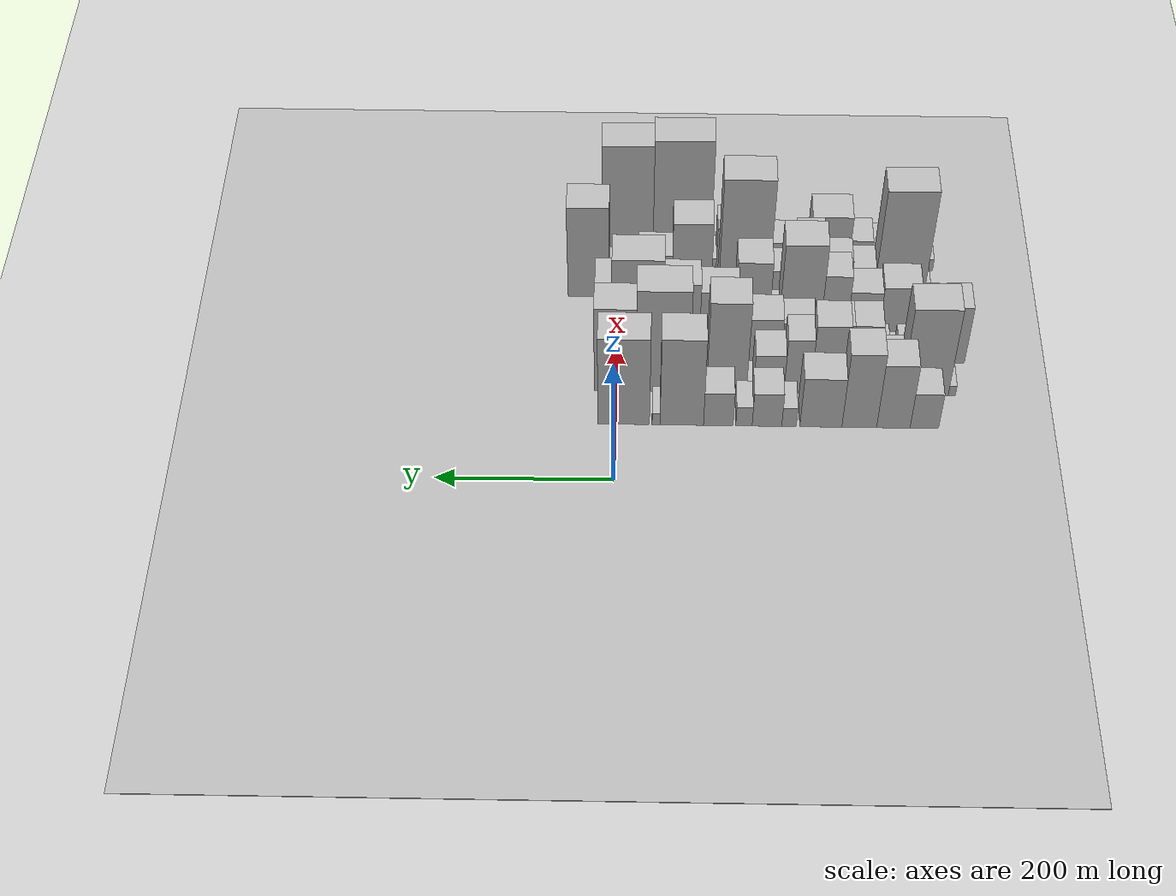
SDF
<sdf version="1.6">
 <world name="default">
  <include><name>ground_plane_1</name><uri>model://HANNAS_ground_plane</uri></include>
  <include>
   <name>ground_plane_2</name>
   <uri>model://HANNAS_ground_plane</uri>
   <pose>100 0 0  0 0 0</pose>
  </include>
  <model name="building_12">
   <static>1</static>
   <pose>100.0000 -352.0713 0 0.000000 0.000000 0.000000</pose>
   <link name="link">
    <pose>0 0 30.00 0 0 0</pose>
    <collision name="collision"><geometry><box><size>40.0000 32.4109 60.0000</size></box></geometry></collision>
    <visual name="visual">
     <cast_shadows>0</cast_shadows>
     <geometry><box><size>40.0000 32.4109 60.0000</size></box></geometry>
     <material>
      <script>
       <uri>model://HANNAS_wall/materials/scripts</uri>
       <uri>model://HANNAS_wall/materials/textures</uri>
       <name>vrc/HANNAS_wall</name>
      </script>
     </material>
    </visual>
   </link>
  </model>
  <model name="building_13">
   <static>1</static>
   <pose>100.0000 -316.8234 0 0.000000 0.000000 0.000000</pose>
   <link name="link">
    <pose>0 0 54.00 0 0 0</pose>
    <collision name="collision"><geometry><box><size>40.0000 38.0850 108.0000</size></box></geometry></collision>
    <visual name="visual">
     <cast_shadows>0</cast_shadows>
     <geometry><box><size>40.0000 38.0850 108.0000</size></box></geometry>
     <material>
      <script>
       <uri>model://HANNAS_wall/materials/scripts</uri>
       <uri>model://HANNAS_wall/materials/textures</uri>
       <name>vrc/HANNAS_wall</name>
      </script>
     </material>
    </visual>
   </link>
  </model>
  <model name="building_14">
   <static>1</static>
   <pose>100.0000 -278.0052 0 0.000000 0.000000 0.000000</pose>
   <link name="link">
    <pose>0 0 63.00 0 0 0</pose>
    <collision name="collision"><geometry><box><size>40.0000 39.5514 126.0000</size></box></geometry></collision>
    <visual name="visual">
     <cast_shadows>0</cast_shadows>
     <geometry><box><size>40.0000 39.5514 126.0000</size></box></geometry>
     <material>
      <script>
       <uri>model://HANNAS_wall/materials/scripts</uri>
       <uri>model://HANNAS_wall/materials/textures</uri>
       <name>vrc/HANNAS_wall</name>
      </script>
     </material>
    </visual>
   </link>
  </model>
  <model name="building_15">
   <static>1</static>
   <pose>100.0000 -234.2888 0 0.000000 0.000000 0.000000</pose>
   <link name="link">
    <pose>0 0 42.00 0 0 0</pose>
    <collision name="collision"><geometry><box><size>40.0000 47.8813 84.0000</size></box></geometry></collision>
    <visual name="visual">
     <cast_shadows>0</cast_shadows>
     <geometry><box><size>40.0000 47.8813 84.0000</size></box></geometry>
     <material>
      <script>
       <uri>model://HANNAS_wall/materials/scripts</uri>
       <uri>model://HANNAS_wall/materials/textures</uri>
       <name>vrc/HANNAS_wall</name>
      </script>
     </material>
    </visual>
   </link>
  </model>
  <model name="building_16">
   <static>1</static>
   <pose>100.0000 -198.0670 0 0.000000 0.000000 0.000000</pose>
   <link name="link">
    <pose>0 0 16.50 0 0 0</pose>
    <collision name="collision"><geometry><box><size>40.0000 16.5623 33.0000</size></box></geometry></collision>
    <visual name="visual">
     <cast_shadows>0</cast_shadows>
     <geometry><box><size>40.0000 16.5623 33.0000</size></box></geometry>
     <material>
      <script>
       <uri>model://HANNAS_wall/materials/scripts</uri>
       <uri>model://HANNAS_wall/materials/textures</uri>
       <name>vrc/HANNAS_wall</name>
      </script>
     </material>
    </visual>
   </link>
  </model>
  <model name="building_17">
   <static>1</static>
   <pose>100.0000 -172.8965 0 0.000000 0.000000 0.000000</pose>
   <link name="link">
    <pose>0 0 28.50 0 0 0</pose>
    <collision name="collision"><geometry><box><size>40.0000 33.7787 57.0000</size></box></geometry></collision>
    <visual name="visual">
     <cast_shadows>0</cast_shadows>
     <geometry><box><size>40.0000 33.7787 57.0000</size></box></geometry>
     <material>
      <script>
       <uri>model://HANNAS_wall/materials/scripts</uri>
       <uri>model://HANNAS_wall/materials/textures</uri>
       <name>vrc/HANNAS_wall</name>
      </script>
     </material>
    </visual>
   </link>
  </model>
  <model name="building_18">
   <static>1</static>
   <pose>100.0000 -146.7060 0 0.000000 0.000000 0.000000</pose>
   <link name="link">
    <pose>0 0 16.50 0 0 0</pose>
    <collision name="collision"><geometry><box><size>40.0000 18.6024 33.0000</size></box></geometry></collision>
    <visual name="visual">
     <cast_shadows>0</cast_shadows>
     <geometry><box><size>40.0000 18.6024 33.0000</size></box></geometry>
     <material>
      <script>
       <uri>model://HANNAS_wall/materials/scripts</uri>
       <uri>model://HANNAS_wall/materials/textures</uri>
       <name>vrc/HANNAS_wall</name>
      </script>
     </material>
    </visual>
   </link>
  </model>
  <model name="building_19">
   <static>1</static>
   <pose>100.0000 -117.5233 0 0.000000 0.000000 0.000000</pose>
   <link name="link">
    <pose>0 0 28.50 0 0 0</pose>
    <collision name="collision"><geometry><box><size>40.0000 33.7629 57.0000</size></box></geometry></collision>
    <visual name="visual">
     <cast_shadows>0</cast_shadows>
     <geometry><box><size>40.0000 33.7629 57.0000</size></box></geometry>
     <material>
      <script>
       <uri>model://HANNAS_wall/materials/scripts</uri>
       <uri>model://HANNAS_wall/materials/textures</uri>
       <name>vrc/HANNAS_wall</name>
      </script>
     </material>
    </visual>
   </link>
  </model>
  <model name="building_20">
   <static>1</static>
   <pose>100.0000 -75.8628 0 0.000000 0.000000 0.000000</pose>
   <link name="link">
    <pose>0 0 73.50 0 0 0</pose>
    <collision name="collision"><geometry><box><size>40.0000 49.5582 147.0000</size></box></geometry></collision>
    <visual name="visual">
     <cast_shadows>0</cast_shadows>
     <geometry><box><size>40.0000 49.5582 147.0000</size></box></geometry>
     <material>
      <script>
       <uri>model://HANNAS_wall/materials/scripts</uri>
       <uri>model://HANNAS_wall/materials/textures</uri>
       <name>vrc/HANNAS_wall</name>
      </script>
     </material>
    </visual>
   </link>
  </model>
  <model name="building_21">
   <static>1</static>
   <pose>100.0000 -46.5748 0 0.000000 0.000000 0.000000</pose>
   <link name="link">
    <pose>0 0 10.50 0 0 0</pose>
    <collision name="collision"><geometry><box><size>40.0000 9.0179 21.0000</size></box></geometry></collision>
    <visual name="visual">
     <cast_shadows>0</cast_shadows>
     <geometry><box><size>40.0000 9.0179 21.0000</size></box></geometry>
     <material>
      <script>
       <uri>model://HANNAS_wall/materials/scripts</uri>
       <uri>model://HANNAS_wall/materials/textures</uri>
       <name>vrc/HANNAS_wall</name>
      </script>
     </material>
    </visual>
   </link>
  </model>
  <model name="building_22">
   <static>1</static>
   <pose>100.0000 -9.7291 0 0.000000 0.000000 0.000000</pose>
   <link name="link">
    <pose>0 0 73.50 0 0 0</pose>
    <collision name="collision"><geometry><box><size>40.0000 58.6735 147.0000</size></box></geometry></collision>
    <visual name="visual">
     <cast_shadows>0</cast_shadows>
     <geometry><box><size>40.0000 58.6735 147.0000</size></box></geometry>
     <material>
      <script>
       <uri>model://HANNAS_wall/materials/scripts</uri>
       <uri>model://HANNAS_wall/materials/textures</uri>
       <name>vrc/HANNAS_wall</name>
      </script>
     </material>
    </visual>
   </link>
  </model>
  <model name="building_58">
   <static>1</static>
   <pose>149.0000 -387.4839 0 0.000000 0.000000 0.000000</pose>
   <link name="link">
    <pose>0 0 9.00 0 0 0</pose>
    <collision name="collision"><geometry><box><size>40.0000 8.3761 18.0000</size></box></geometry></collision>
    <visual name="visual">
     <cast_shadows>0</cast_shadows>
     <geometry><box><size>40.0000 8.3761 18.0000</size></box></geometry>
     <material>
      <script>
       <uri>model://HANNAS_wall/materials/scripts</uri>
       <uri>model://HANNAS_wall/materials/textures</uri>
       <name>vrc/HANNAS_wall</name>
      </script>
     </material>
    </visual>
   </link>
  </model>
  <model name="building_59">
   <static>1</static>
   <pose>149.0000 -356.2429 0 0.000000 0.000000 0.000000</pose>
   <link name="link">
    <pose>0 0 73.50 0 0 0</pose>
    <collision name="collision"><geometry><box><size>40.0000 54.1060 147.0000</size></box></geometry></collision>
    <visual name="visual">
     <cast_shadows>0</cast_shadows>
     <geometry><box><size>40.0000 54.1060 147.0000</size></box></geometry>
     <material>
      <script>
       <uri>model://HANNAS_wall/materials/scripts</uri>
       <uri>model://HANNAS_wall/materials/textures</uri>
       <name>vrc/HANNAS_wall</name>
      </script>
     </material>
    </visual>
   </link>
  </model>
  <model name="building_60">
   <static>1</static>
   <pose>149.0000 -311.7719 0 0.000000 0.000000 0.000000</pose>
   <link name="link">
    <pose>0 0 30.00 0 0 0</pose>
    <collision name="collision"><geometry><box><size>40.0000 34.8358 60.0000</size></box></geometry></collision>
    <visual name="visual">
     <cast_shadows>0</cast_shadows>
     <geometry><box><size>40.0000 34.8358 60.0000</size></box></geometry>
     <material>
      <script>
       <uri>model://HANNAS_wall/materials/scripts</uri>
       <uri>model://HANNAS_wall/materials/textures</uri>
       <name>vrc/HANNAS_wall</name>
      </script>
     </material>
    </visual>
   </link>
  </model>
  <model name="building_61">
   <static>1</static>
   <pose>149.0000 -277.9789 0 0.000000 0.000000 0.000000</pose>
   <link name="link">
    <pose>0 0 15.00 0 0 0</pose>
    <collision name="collision"><geometry><box><size>40.0000 16.7503 30.0000</size></box></geometry></collision>
    <visual name="visual">
     <cast_shadows>0</cast_shadows>
     <geometry><box><size>40.0000 16.7503 30.0000</size></box></geometry>
     <material>
      <script>
       <uri>model://HANNAS_wall/materials/scripts</uri>
       <uri>model://HANNAS_wall/materials/textures</uri>
       <name>vrc/HANNAS_wall</name>
      </script>
     </material>
    </visual>
   </link>
  </model>
  <model name="building_62">
   <static>1</static>
   <pose>149.0000 -244.0146 0 0.000000 0.000000 0.000000</pose>
   <link name="link">
    <pose>0 0 58.50 0 0 0</pose>
    <collision name="collision"><geometry><box><size>40.0000 39.1783 117.0000</size></box></geometry></collision>
    <visual name="visual">
     <cast_shadows>0</cast_shadows>
     <geometry><box><size>40.0000 39.1783 117.0000</size></box></geometry>
     <material>
      <script>
       <uri>model://HANNAS_wall/materials/scripts</uri>
       <uri>model://HANNAS_wall/materials/textures</uri>
       <name>vrc/HANNAS_wall</name>
      </script>
     </material>
    </visual>
   </link>
  </model>
  <model name="building_63">
   <static>1</static>
   <pose>149.0000 -209.0764 0 0.000000 0.000000 0.000000</pose>
   <link name="link">
    <pose>0 0 46.50 0 0 0</pose>
    <collision name="collision"><geometry><box><size>40.0000 30.6981 93.0000</size></box></geometry></collision>
    <visual name="visual">
     <cast_shadows>0</cast_shadows>
     <geometry><box><size>40.0000 30.6981 93.0000</size></box></geometry>
     <material>
      <script>
       <uri>model://HANNAS_wall/materials/scripts</uri>
       <uri>model://HANNAS_wall/materials/textures</uri>
       <name>vrc/HANNAS_wall</name>
      </script>
     </material>
    </visual>
   </link>
  </model>
  <model name="building_64">
   <static>1</static>
   <pose>149.0000 -176.1616 0 0.000000 0.000000 0.000000</pose>
   <link name="link">
    <pose>0 0 33.00 0 0 0</pose>
    <collision name="collision"><geometry><box><size>40.0000 35.1316 66.0000</size></box></geometry></collision>
    <visual name="visual">
     <cast_shadows>0</cast_shadows>
     <geometry><box><size>40.0000 35.1316 66.0000</size></box></geometry>
     <material>
      <script>
       <uri>model://HANNAS_wall/materials/scripts</uri>
       <uri>model://HANNAS_wall/materials/textures</uri>
       <name>vrc/HANNAS_wall</name>
      </script>
     </material>
    </visual>
   </link>
  </model>
  <model name="building_65">
   <static>1</static>
   <pose>149.0000 -127.5393 0 0.000000 0.000000 0.000000</pose>
   <link name="link">
    <pose>0 0 76.50 0 0 0</pose>
    <collision name="collision"><geometry><box><size>40.0000 46.1130 153.0000</size></box></geometry></collision>
    <visual name="visual">
     <cast_shadows>0</cast_shadows>
     <geometry><box><size>40.0000 46.1130 153.0000</size></box></geometry>
     <material>
      <script>
       <uri>model://HANNAS_wall/materials/scripts</uri>
       <uri>model://HANNAS_wall/materials/textures</uri>
       <name>vrc/HANNAS_wall</name>
      </script>
     </material>
    </visual>
   </link>
  </model>
  <model name="building_66">
   <static>1</static>
   <pose>149.0000 -89.4264 0 0.000000 0.000000 0.000000</pose>
   <link name="link">
    <pose>0 0 10.50 0 0 0</pose>
    <collision name="collision"><geometry><box><size>40.0000 10.1128 21.0000</size></box></geometry></collision>
    <visual name="visual">
     <cast_shadows>0</cast_shadows>
     <geometry><box><size>40.0000 10.1128 21.0000</size></box></geometry>
     <material>
      <script>
       <uri>model://HANNAS_wall/materials/scripts</uri>
       <uri>model://HANNAS_wall/materials/textures</uri>
       <name>vrc/HANNAS_wall</name>
      </script>
     </material>
    </visual>
   </link>
  </model>
  <model name="building_67">
   <static>1</static>
   <pose>149.0000 -53.6856 0 0.000000 0.000000 0.000000</pose>
   <link name="link">
    <pose>0 0 85.50 0 0 0</pose>
    <collision name="collision"><geometry><box><size>40.0000 61.3687 171.0000</size></box></geometry></collision>
    <visual name="visual">
     <cast_shadows>0</cast_shadows>
     <geometry><box><size>40.0000 61.3687 171.0000</size></box></geometry>
     <material>
      <script>
       <uri>model://HANNAS_wall/materials/scripts</uri>
       <uri>model://HANNAS_wall/materials/textures</uri>
       <name>vrc/HANNAS_wall</name>
      </script>
     </material>
    </visual>
   </link>
  </model>
  <model name="building_68">
   <static>1</static>
   <pose>149.0000 0.9310 0 0.000000 0.000000 0.000000</pose>
   <link name="link">
    <pose>0 0 70.50 0 0 0</pose>
    <collision name="collision"><geometry><box><size>40.0000 47.8645 141.0000</size></box></geometry></collision>
    <visual name="visual">
     <cast_shadows>0</cast_shadows>
     <geometry><box><size>40.0000 47.8645 141.0000</size></box></geometry>
     <material>
      <script>
       <uri>model://HANNAS_wall/materials/scripts</uri>
       <uri>model://HANNAS_wall/materials/textures</uri>
       <name>vrc/HANNAS_wall</name>
      </script>
     </material>
    </visual>
   </link>
  </model>
  <model name="building_106">
   <static>1</static>
   <pose>198.0000 -391.7980 0 0.000000 0.000000 0.000000</pose>
   <link name="link">
    <pose>0 0 48.00 0 0 0</pose>
    <collision name="collision"><geometry><box><size>40.0000 28.8769 96.0000</size></box></geometry></collision>
    <visual name="visual">
     <cast_shadows>0</cast_shadows>
     <geometry><box><size>40.0000 28.8769 96.0000</size></box></geometry>
     <material>
      <script>
       <uri>model://HANNAS_wall/materials/scripts</uri>
       <uri>model://HANNAS_wall/materials/textures</uri>
       <name>vrc/HANNAS_wall</name>
      </script>
     </material>
    </visual>
   </link>
  </model>
  <model name="building_107">
   <static>1</static>
   <pose>198.0000 -356.1934 0 0.000000 0.000000 0.000000</pose>
   <link name="link">
    <pose>0 0 31.50 0 0 0</pose>
    <collision name="collision"><geometry><box><size>40.0000 32.3324 63.0000</size></box></geometry></collision>
    <visual name="visual">
     <cast_shadows>0</cast_shadows>
     <geometry><box><size>40.0000 32.3324 63.0000</size></box></geometry>
     <material>
      <script>
       <uri>model://HANNAS_wall/materials/scripts</uri>
       <uri>model://HANNAS_wall/materials/textures</uri>
       <name>vrc/HANNAS_wall</name>
      </script>
     </material>
    </visual>
   </link>
  </model>
  <model name="building_108">
   <static>1</static>
   <pose>198.0000 -334.2231 0 0.000000 0.000000 0.000000</pose>
   <link name="link">
    <pose>0 0 12.00 0 0 0</pose>
    <collision name="collision"><geometry><box><size>40.0000 11.6083 24.0000</size></box></geometry></collision>
    <visual name="visual">
     <cast_shadows>0</cast_shadows>
     <geometry><box><size>40.0000 11.6083 24.0000</size></box></geometry>
     <material>
      <script>
       <uri>model://HANNAS_wall/materials/scripts</uri>
       <uri>model://HANNAS_wall/materials/textures</uri>
       <name>vrc/HANNAS_wall</name>
      </script>
     </material>
    </visual>
   </link>
  </model>
  <model name="building_109">
   <static>1</static>
   <pose>198.0000 -313.2500 0 0.000000 0.000000 0.000000</pose>
   <link name="link">
    <pose>0 0 12.00 0 0 0</pose>
    <collision name="collision"><geometry><box><size>40.0000 10.3378 24.0000</size></box></geometry></collision>
    <visual name="visual">
     <cast_shadows>0</cast_shadows>
     <geometry><box><size>40.0000 10.3378 24.0000</size></box></geometry>
     <material>
      <script>
       <uri>model://HANNAS_wall/materials/scripts</uri>
       <uri>model://HANNAS_wall/materials/textures</uri>
       <name>vrc/HANNAS_wall</name>
      </script>
     </material>
    </visual>
   </link>
  </model>
  <model name="building_110">
   <static>1</static>
   <pose>198.0000 -291.2838 0 0.000000 0.000000 0.000000</pose>
   <link name="link">
    <pose>0 0 31.50 0 0 0</pose>
    <collision name="collision"><geometry><box><size>40.0000 33.5947 63.0000</size></box></geometry></collision>
    <visual name="visual">
     <cast_shadows>0</cast_shadows>
     <geometry><box><size>40.0000 33.5947 63.0000</size></box></geometry>
     <material>
      <script>
       <uri>model://HANNAS_wall/materials/scripts</uri>
       <uri>model://HANNAS_wall/materials/textures</uri>
       <name>vrc/HANNAS_wall</name>
      </script>
     </material>
    </visual>
   </link>
  </model>
  <model name="building_111">
   <static>1</static>
   <pose>198.0000 -256.0972 0 0.000000 0.000000 0.000000</pose>
   <link name="link">
    <pose>0 0 31.50 0 0 0</pose>
    <collision name="collision"><geometry><box><size>40.0000 36.7785 63.0000</size></box></geometry></collision>
    <visual name="visual">
     <cast_shadows>0</cast_shadows>
     <geometry><box><size>40.0000 36.7785 63.0000</size></box></geometry>
     <material>
      <script>
       <uri>model://HANNAS_wall/materials/scripts</uri>
       <uri>model://HANNAS_wall/materials/textures</uri>
       <name>vrc/HANNAS_wall</name>
      </script>
     </material>
    </visual>
   </link>
  </model>
  <model name="building_112">
   <static>1</static>
   <pose>198.0000 -210.4511 0 0.000000 0.000000 0.000000</pose>
   <link name="link">
    <pose>0 0 33.00 0 0 0</pose>
    <collision name="collision"><geometry><box><size>40.0000 36.5137 66.0000</size></box></geometry></collision>
    <visual name="visual">
     <cast_shadows>0</cast_shadows>
     <geometry><box><size>40.0000 36.5137 66.0000</size></box></geometry>
     <material>
      <script>
       <uri>model://HANNAS_wall/materials/scripts</uri>
       <uri>model://HANNAS_wall/materials/textures</uri>
       <name>vrc/HANNAS_wall</name>
      </script>
     </material>
    </visual>
   </link>
  </model>
  <model name="building_113">
   <static>1</static>
   <pose>198.0000 -171.9728 0 0.000000 0.000000 0.000000</pose>
   <link name="link">
    <pose>0 0 36.00 0 0 0</pose>
    <collision name="collision"><geometry><box><size>40.0000 40.4430 72.0000</size></box></geometry></collision>
    <visual name="visual">
     <cast_shadows>0</cast_shadows>
     <geometry><box><size>40.0000 40.4430 72.0000</size></box></geometry>
     <material>
      <script>
       <uri>model://HANNAS_wall/materials/scripts</uri>
       <uri>model://HANNAS_wall/materials/textures</uri>
       <name>vrc/HANNAS_wall</name>
      </script>
     </material>
    </visual>
   </link>
  </model>
  <model name="building_114">
   <static>1</static>
   <pose>198.0000 -145.6920 0 0.000000 0.000000 0.000000</pose>
   <link name="link">
    <pose>0 0 13.50 0 0 0</pose>
    <collision name="collision"><geometry><box><size>40.0000 12.1185 27.0000</size></box></geometry></collision>
    <visual name="visual">
     <cast_shadows>0</cast_shadows>
     <geometry><box><size>40.0000 12.1185 27.0000</size></box></geometry>
     <material>
      <script>
       <uri>model://HANNAS_wall/materials/scripts</uri>
       <uri>model://HANNAS_wall/materials/textures</uri>
       <name>vrc/HANNAS_wall</name>
      </script>
     </material>
    </visual>
   </link>
  </model>
  <model name="building_115">
   <static>1</static>
   <pose>198.0000 -117.6447 0 0.000000 0.000000 0.000000</pose>
   <link name="link">
    <pose>0 0 58.50 0 0 0</pose>
    <collision name="collision"><geometry><box><size>40.0000 43.9761 117.0000</size></box></geometry></collision>
    <visual name="visual">
     <cast_shadows>0</cast_shadows>
     <geometry><box><size>40.0000 43.9761 117.0000</size></box></geometry>
     <material>
      <script>
       <uri>model://HANNAS_wall/materials/scripts</uri>
       <uri>model://HANNAS_wall/materials/textures</uri>
       <name>vrc/HANNAS_wall</name>
      </script>
     </material>
    </visual>
   </link>
  </model>
  <model name="building_116">
   <static>1</static>
   <pose>198.0000 -74.8340 0 0.000000 0.000000 0.000000</pose>
   <link name="link">
    <pose>0 0 64.50 0 0 0</pose>
    <collision name="collision"><geometry><box><size>40.0000 41.6453 129.0000</size></box></geometry></collision>
    <visual name="visual">
     <cast_shadows>0</cast_shadows>
     <geometry><box><size>40.0000 41.6453 129.0000</size></box></geometry>
     <material>
      <script>
       <uri>model://HANNAS_wall/materials/scripts</uri>
       <uri>model://HANNAS_wall/materials/textures</uri>
       <name>vrc/HANNAS_wall</name>
      </script>
     </material>
    </visual>
   </link>
  </model>
  <model name="building_117">
   <static>1</static>
   <pose>198.0000 -24.2948 0 0.000000 0.000000 0.000000</pose>
   <link name="link">
    <pose>0 0 84.00 0 0 0</pose>
    <collision name="collision"><geometry><box><size>40.0000 59.4331 168.0000</size></box></geometry></collision>
    <visual name="visual">
     <cast_shadows>0</cast_shadows>
     <geometry><box><size>40.0000 59.4331 168.0000</size></box></geometry>
     <material>
      <script>
       <uri>model://HANNAS_wall/materials/scripts</uri>
       <uri>model://HANNAS_wall/materials/textures</uri>
       <name>vrc/HANNAS_wall</name>
      </script>
     </material>
    </visual>
   </link>
  </model>
  <model name="building_118">
   <static>1</static>
   <pose>198.0000 11.9076 0 0.000000 0.000000 0.000000</pose>
   <link name="link">
    <pose>0 0 7.50 0 0 0</pose>
    <collision name="collision"><geometry><box><size>40.0000 6.9717 15.0000</size></box></geometry></collision>
    <visual name="visual">
     <cast_shadows>0</cast_shadows>
     <geometry><box><size>40.0000 6.9717 15.0000</size></box></geometry>
     <material>
      <script>
       <uri>model://HANNAS_wall/materials/scripts</uri>
       <uri>model://HANNAS_wall/materials/textures</uri>
       <name>vrc/HANNAS_wall</name>
      </script>
     </material>
    </visual>
   </link>
  </model>
  <model name="building_156">
   <static>1</static>
   <pose>247.0000 -366.8235 0 0.000000 0.000000 0.000000</pose>
   <link name="link">
    <pose>0 0 21.00 0 0 0</pose>
    <collision name="collision"><geometry><box><size>40.0000 24.9106 42.0000</size></box></geometry></collision>
    <visual name="visual">
     <cast_shadows>0</cast_shadows>
     <geometry><box><size>40.0000 24.9106 42.0000</size></box></geometry>
     <material>
      <script>
       <uri>model://HANNAS_wall/materials/scripts</uri>
       <uri>model://HANNAS_wall/materials/textures</uri>
       <name>vrc/HANNAS_wall</name>
      </script>
     </material>
    </visual>
   </link>
  </model>
  <model name="building_157">
   <static>1</static>
   <pose>247.0000 -332.1568 0 0.000000 0.000000 0.000000</pose>
   <link name="link">
    <pose>0 0 37.50 0 0 0</pose>
    <collision name="collision"><geometry><box><size>40.0000 44.4227 75.0000</size></box></geometry></collision>
    <visual name="visual">
     <cast_shadows>0</cast_shadows>
     <geometry><box><size>40.0000 44.4227 75.0000</size></box></geometry>
     <material>
      <script>
       <uri>model://HANNAS_wall/materials/scripts</uri>
       <uri>model://HANNAS_wall/materials/textures</uri>
       <name>vrc/HANNAS_wall</name>
      </script>
     </material>
    </visual>
   </link>
  </model>
  <model name="building_158">
   <static>1</static>
   <pose>247.0000 -290.9001 0 0.000000 0.000000 0.000000</pose>
   <link name="link">
    <pose>0 0 33.00 0 0 0</pose>
    <collision name="collision"><geometry><box><size>40.0000 38.0909 66.0000</size></box></geometry></collision>
    <visual name="visual">
     <cast_shadows>0</cast_shadows>
     <geometry><box><size>40.0000 38.0909 66.0000</size></box></geometry>
     <material>
      <script>
       <uri>model://HANNAS_wall/materials/scripts</uri>
       <uri>model://HANNAS_wall/materials/textures</uri>
       <name>vrc/HANNAS_wall</name>
      </script>
     </material>
    </visual>
   </link>
  </model>
  <model name="building_159">
   <static>1</static>
   <pose>247.0000 -256.1348 0 0.000000 0.000000 0.000000</pose>
   <link name="link">
    <pose>0 0 46.50 0 0 0</pose>
    <collision name="collision"><geometry><box><size>40.0000 31.4397 93.0000</size></box></geometry></collision>
    <visual name="visual">
     <cast_shadows>0</cast_shadows>
     <geometry><box><size>40.0000 31.4397 93.0000</size></box></geometry>
     <material>
      <script>
       <uri>model://HANNAS_wall/materials/scripts</uri>
       <uri>model://HANNAS_wall/materials/textures</uri>
       <name>vrc/HANNAS_wall</name>
      </script>
     </material>
    </visual>
   </link>
  </model>
  <model name="building_160">
   <static>1</static>
   <pose>247.0000 -215.7185 0 0.000000 0.000000 0.000000</pose>
   <link name="link">
    <pose>0 0 72.00 0 0 0</pose>
    <collision name="collision"><geometry><box><size>40.0000 49.3929 144.0000</size></box></geometry></collision>
    <visual name="visual">
     <cast_shadows>0</cast_shadows>
     <geometry><box><size>40.0000 49.3929 144.0000</size></box></geometry>
     <material>
      <script>
       <uri>model://HANNAS_wall/materials/scripts</uri>
       <uri>model://HANNAS_wall/materials/textures</uri>
       <name>vrc/HANNAS_wall</name>
      </script>
     </material>
    </visual>
   </link>
  </model>
  <model name="building_161">
   <static>1</static>
   <pose>247.0000 -185.0529 0 0.000000 0.000000 0.000000</pose>
   <link name="link">
    <pose>0 0 13.50 0 0 0</pose>
    <collision name="collision"><geometry><box><size>40.0000 11.9383 27.0000</size></box></geometry></collision>
    <visual name="visual">
     <cast_shadows>0</cast_shadows>
     <geometry><box><size>40.0000 11.9383 27.0000</size></box></geometry>
     <material>
      <script>
       <uri>model://HANNAS_wall/materials/scripts</uri>
       <uri>model://HANNAS_wall/materials/textures</uri>
       <name>vrc/HANNAS_wall</name>
      </script>
     </material>
    </visual>
   </link>
  </model>
  <model name="building_162">
   <static>1</static>
   <pose>247.0000 -158.8027 0 0.000000 0.000000 0.000000</pose>
   <link name="link">
    <pose>0 0 57.00 0 0 0</pose>
    <collision name="collision"><geometry><box><size>40.0000 40.5620 114.0000</size></box></geometry></collision>
    <visual name="visual">
     <cast_shadows>0</cast_shadows>
     <geometry><box><size>40.0000 40.5620 114.0000</size></box></geometry>
     <material>
      <script>
       <uri>model://HANNAS_wall/materials/scripts</uri>
       <uri>model://HANNAS_wall/materials/textures</uri>
       <name>vrc/HANNAS_wall</name>
      </script>
     </material>
    </visual>
   </link>
  </model>
  <model name="building_163">
   <static>1</static>
   <pose>247.0000 -127.0566 0 0.000000 0.000000 0.000000</pose>
   <link name="link">
    <pose>0 0 19.50 0 0 0</pose>
    <collision name="collision"><geometry><box><size>40.0000 22.9303 39.0000</size></box></geometry></collision>
    <visual name="visual">
     <cast_shadows>0</cast_shadows>
     <geometry><box><size>40.0000 22.9303 39.0000</size></box></geometry>
     <material>
      <script>
       <uri>model://HANNAS_wall/materials/scripts</uri>
       <uri>model://HANNAS_wall/materials/textures</uri>
       <name>vrc/HANNAS_wall</name>
      </script>
     </material>
    </visual>
   </link>
  </model>
  <model name="building_164">
   <static>1</static>
   <pose>247.0000 -101.3671 0 0.000000 0.000000 0.000000</pose>
   <link name="link">
    <pose>0 0 15.00 0 0 0</pose>
    <collision name="collision"><geometry><box><size>40.0000 16.4486 30.0000</size></box></geometry></collision>
    <visual name="visual">
     <cast_shadows>0</cast_shadows>
     <geometry><box><size>40.0000 16.4486 30.0000</size></box></geometry>
     <material>
      <script>
       <uri>model://HANNAS_wall/materials/scripts</uri>
       <uri>model://HANNAS_wall/materials/textures</uri>
       <name>vrc/HANNAS_wall</name>
      </script>
     </material>
    </visual>
   </link>
  </model>
  <model name="building_165">
   <static>1</static>
   <pose>247.0000 -70.6679 0 0.000000 0.000000 0.000000</pose>
   <link name="link">
    <pose>0 0 27.00 0 0 0</pose>
    <collision name="collision"><geometry><box><size>40.0000 28.9497 54.0000</size></box></geometry></collision>
    <visual name="visual">
     <cast_shadows>0</cast_shadows>
     <geometry><box><size>40.0000 28.9497 54.0000</size></box></geometry>
     <material>
      <script>
       <uri>model://HANNAS_wall/materials/scripts</uri>
       <uri>model://HANNAS_wall/materials/textures</uri>
       <name>vrc/HANNAS_wall</name>
      </script>
     </material>
    </visual>
   </link>
  </model>
  <model name="building_166">
   <static>1</static>
   <pose>247.0000 -45.3790 0 0.000000 0.000000 0.000000</pose>
   <link name="link">
    <pose>0 0 19.50 0 0 0</pose>
    <collision name="collision"><geometry><box><size>40.0000 21.6282 39.0000</size></box></geometry></collision>
    <visual name="visual">
     <cast_shadows>0</cast_shadows>
     <geometry><box><size>40.0000 21.6282 39.0000</size></box></geometry>
     <material>
      <script>
       <uri>model://HANNAS_wall/materials/scripts</uri>
       <uri>model://HANNAS_wall/materials/textures</uri>
       <name>vrc/HANNAS_wall</name>
      </script>
     </material>
    </visual>
   </link>
  </model>
  <model name="building_167">
   <static>1</static>
   <pose>247.0000 -24.8988 0 0.000000 0.000000 0.000000</pose>
   <link name="link">
    <pose>0 0 12.00 0 0 0</pose>
    <collision name="collision"><geometry><box><size>40.0000 11.3321 24.0000</size></box></geometry></collision>
    <visual name="visual">
     <cast_shadows>0</cast_shadows>
     <geometry><box><size>40.0000 11.3321 24.0000</size></box></geometry>
     <material>
      <script>
       <uri>model://HANNAS_wall/materials/scripts</uri>
       <uri>model://HANNAS_wall/materials/textures</uri>
       <name>vrc/HANNAS_wall</name>
      </script>
     </material>
    </visual>
   </link>
  </model>
  <model name="building_168">
   <static>1</static>
   <pose>247.0000 3.5752 0 0.000000 0.000000 0.000000</pose>
   <link name="link">
    <pose>0 0 39.00 0 0 0</pose>
    <collision name="collision"><geometry><box><size>40.0000 45.6160 78.0000</size></box></geometry></collision>
    <visual name="visual">
     <cast_shadows>0</cast_shadows>
     <geometry><box><size>40.0000 45.6160 78.0000</size></box></geometry>
     <material>
      <script>
       <uri>model://HANNAS_wall/materials/scripts</uri>
       <uri>model://HANNAS_wall/materials/textures</uri>
       <name>vrc/HANNAS_wall</name>
      </script>
     </material>
    </visual>
   </link>
  </model>
  <model name="building_211">
   <static>1</static>
   <pose>296.0000 -369.7304 0 0.000000 0.000000 0.000000</pose>
   <link name="link">
    <pose>0 0 9.00 0 0 0</pose>
    <collision name="collision"><geometry><box><size>40.0000 8.4636 18.0000</size></box></geometry></collision>
    <visual name="visual">
     <cast_shadows>0</cast_shadows>
     <geometry><box><size>40.0000 8.4636 18.0000</size></box></geometry>
     <material>
      <script>
       <uri>model://HANNAS_wall/materials/scripts</uri>
       <uri>model://HANNAS_wall/materials/textures</uri>
       <name>vrc/HANNAS_wall</name>
      </script>
     </material>
    </visual>
   </link>
  </model>
  <model name="building_212">
   <static>1</static>
   <pose>296.0000 -335.6034 0 0.000000 0.000000 0.000000</pose>
   <link name="link">
    <pose>0 0 91.50 0 0 0</pose>
    <collision name="collision"><geometry><box><size>40.0000 59.7904 183.0000</size></box></geometry></collision>
    <visual name="visual">
     <cast_shadows>0</cast_shadows>
     <geometry><box><size>40.0000 59.7904 183.0000</size></box></geometry>
     <material>
      <script>
       <uri>model://HANNAS_wall/materials/scripts</uri>
       <uri>model://HANNAS_wall/materials/textures</uri>
       <name>vrc/HANNAS_wall</name>
      </script>
     </material>
    </visual>
   </link>
  </model>
  <model name="building_213">
   <static>1</static>
   <pose>296.0000 -291.5692 0 0.000000 0.000000 0.000000</pose>
   <link name="link">
    <pose>0 0 27.00 0 0 0</pose>
    <collision name="collision"><geometry><box><size>40.0000 28.2779 54.0000</size></box></geometry></collision>
    <visual name="visual">
     <cast_shadows>0</cast_shadows>
     <geometry><box><size>40.0000 28.2779 54.0000</size></box></geometry>
     <material>
      <script>
       <uri>model://HANNAS_wall/materials/scripts</uri>
       <uri>model://HANNAS_wall/materials/textures</uri>
       <name>vrc/HANNAS_wall</name>
      </script>
     </material>
    </visual>
   </link>
  </model>
  <model name="building_214">
   <static>1</static>
   <pose>296.0000 -260.1485 0 0.000000 0.000000 0.000000</pose>
   <link name="link">
    <pose>0 0 33.00 0 0 0</pose>
    <collision name="collision"><geometry><box><size>40.0000 34.5635 66.0000</size></box></geometry></collision>
    <visual name="visual">
     <cast_shadows>0</cast_shadows>
     <geometry><box><size>40.0000 34.5635 66.0000</size></box></geometry>
     <material>
      <script>
       <uri>model://HANNAS_wall/materials/scripts</uri>
       <uri>model://HANNAS_wall/materials/textures</uri>
       <name>vrc/HANNAS_wall</name>
      </script>
     </material>
    </visual>
   </link>
  </model>
  <model name="building_215">
   <static>1</static>
   <pose>296.0000 -226.3731 0 0.000000 0.000000 0.000000</pose>
   <link name="link">
    <pose>0 0 49.50 0 0 0</pose>
    <collision name="collision"><geometry><box><size>40.0000 32.9874 99.0000</size></box></geometry></collision>
    <visual name="visual">
     <cast_shadows>0</cast_shadows>
     <geometry><box><size>40.0000 32.9874 99.0000</size></box></geometry>
     <material>
      <script>
       <uri>model://HANNAS_wall/materials/scripts</uri>
       <uri>model://HANNAS_wall/materials/textures</uri>
       <name>vrc/HANNAS_wall</name>
      </script>
     </material>
    </visual>
   </link>
  </model>
  <model name="building_216">
   <static>1</static>
   <pose>296.0000 -193.3845 0 0.000000 0.000000 0.000000</pose>
   <link name="link">
    <pose>0 0 24.00 0 0 0</pose>
    <collision name="collision"><geometry><box><size>40.0000 26.9898 48.0000</size></box></geometry></collision>
    <visual name="visual">
     <cast_shadows>0</cast_shadows>
     <geometry><box><size>40.0000 26.9898 48.0000</size></box></geometry>
     <material>
      <script>
       <uri>model://HANNAS_wall/materials/scripts</uri>
       <uri>model://HANNAS_wall/materials/textures</uri>
       <name>vrc/HANNAS_wall</name>
      </script>
     </material>
    </visual>
   </link>
  </model>
  <model name="building_217">
   <static>1</static>
   <pose>296.0000 -149.9279 0 0.000000 0.000000 0.000000</pose>
   <link name="link">
    <pose>0 0 99.00 0 0 0</pose>
    <collision name="collision"><geometry><box><size>40.0000 59.9232 198.0000</size></box></geometry></collision>
    <visual name="visual">
     <cast_shadows>0</cast_shadows>
     <geometry><box><size>40.0000 59.9232 198.0000</size></box></geometry>
     <material>
      <script>
       <uri>model://HANNAS_wall/materials/scripts</uri>
       <uri>model://HANNAS_wall/materials/textures</uri>
       <name>vrc/HANNAS_wall</name>
      </script>
     </material>
    </visual>
   </link>
  </model>
  <model name="building_218">
   <static>1</static>
   <pose>296.0000 -87.5453 0 0.000000 0.000000 0.000000</pose>
   <link name="link">
    <pose>0 0 63.00 0 0 0</pose>
    <collision name="collision"><geometry><box><size>40.0000 46.8420 126.0000</size></box></geometry></collision>
    <visual name="visual">
     <cast_shadows>0</cast_shadows>
     <geometry><box><size>40.0000 46.8420 126.0000</size></box></geometry>
     <material>
      <script>
       <uri>model://HANNAS_wall/materials/scripts</uri>
       <uri>model://HANNAS_wall/materials/textures</uri>
       <name>vrc/HANNAS_wall</name>
      </script>
     </material>
    </visual>
   </link>
  </model>
  <model name="building_219">
   <static>1</static>
   <pose>296.0000 -43.8783 0 0.000000 0.000000 0.000000</pose>
   <link name="link">
    <pose>0 0 36.00 0 0 0</pose>
    <collision name="collision"><geometry><box><size>40.0000 40.4922 72.0000</size></box></geometry></collision>
    <visual name="visual">
     <cast_shadows>0</cast_shadows>
     <geometry><box><size>40.0000 40.4922 72.0000</size></box></geometry>
     <material>
      <script>
       <uri>model://HANNAS_wall/materials/scripts</uri>
       <uri>model://HANNAS_wall/materials/textures</uri>
       <name>vrc/HANNAS_wall</name>
      </script>
     </material>
    </visual>
   </link>
  </model>
  <model name="building_220">
   <static>1</static>
   <pose>296.0000 -19.4267 0 0.000000 0.000000 0.000000</pose>
   <link name="link">
    <pose>0 0 9.00 0 0 0</pose>
    <collision name="collision"><geometry><box><size>40.0000 8.4109 18.0000</size></box></geometry></collision>
    <visual name="visual">
     <cast_shadows>0</cast_shadows>
     <geometry><box><size>40.0000 8.4109 18.0000</size></box></geometry>
     <material>
      <script>
       <uri>model://HANNAS_wall/materials/scripts</uri>
       <uri>model://HANNAS_wall/materials/textures</uri>
       <name>vrc/HANNAS_wall</name>
      </script>
     </material>
    </visual>
   </link>
  </model>
  <model name="building_221">
   <static>1</static>
   <pose>296.0000 -2.4425 0 0.000000 0.000000 0.000000</pose>
   <link name="link">
    <pose>0 0 22.50 0 0 0</pose>
    <collision name="collision"><geometry><box><size>40.0000 25.5575 45.0000</size></box></geometry></collision>
    <visual name="visual">
     <cast_shadows>0</cast_shadows>
     <geometry><box><size>40.0000 25.5575 45.0000</size></box></geometry>
     <material>
      <script>
       <uri>model://HANNAS_wall/materials/scripts</uri>
       <uri>model://HANNAS_wall/materials/textures</uri>
       <name>vrc/HANNAS_wall</name>
      </script>
     </material>
    </visual>
   </link>
  </model>
  <model name="building_222">
   <static>1</static>
   <pose>296.0000 35.0848 0 0.000000 0.000000 0.000000</pose>
   <link name="link">
    <pose>0 0 75.00 0 0 0</pose>
    <collision name="collision"><geometry><box><size>40.0000 49.4970 150.0000</size></box></geometry></collision>
    <visual name="visual">
     <cast_shadows>0</cast_shadows>
     <geometry><box><size>40.0000 49.4970 150.0000</size></box></geometry>
     <material>
      <script>
       <uri>model://HANNAS_wall/materials/scripts</uri>
       <uri>model://HANNAS_wall/materials/textures</uri>
       <name>vrc/HANNAS_wall</name>
      </script>
     </material>
    </visual>
   </link>
  </model>
  <model name="building_261">
   <static>1</static>
   <pose>345.0000 -376.3724 0 0.000000 0.000000 0.000000</pose>
   <link name="link">
    <pose>0 0 10.50 0 0 0</pose>
    <collision name="collision"><geometry><box><size>40.0000 9.1537 21.0000</size></box></geometry></collision>
    <visual name="visual">
     <cast_shadows>0</cast_shadows>
     <geometry><box><size>40.0000 9.1537 21.0000</size></box></geometry>
     <material>
      <script>
       <uri>model://HANNAS_wall/materials/scripts</uri>
       <uri>model://HANNAS_wall/materials/textures</uri>
       <name>vrc/HANNAS_wall</name>
      </script>
     </material>
    </visual>
   </link>
  </model>
  <model name="building_262">
   <static>1</static>
   <pose>345.0000 -351.6660 0 0.000000 0.000000 0.000000</pose>
   <link name="link">
    <pose>0 0 37.50 0 0 0</pose>
    <collision name="collision"><geometry><box><size>40.0000 40.2592 75.0000</size></box></geometry></collision>
    <visual name="visual">
     <cast_shadows>0</cast_shadows>
     <geometry><box><size>40.0000 40.2592 75.0000</size></box></geometry>
     <material>
      <script>
       <uri>model://HANNAS_wall/materials/scripts</uri>
       <uri>model://HANNAS_wall/materials/textures</uri>
       <name>vrc/HANNAS_wall</name>
      </script>
     </material>
    </visual>
   </link>
  </model>
  <model name="building_263">
   <static>1</static>
   <pose>345.0000 -316.4213 0 0.000000 0.000000 0.000000</pose>
   <link name="link">
    <pose>0 0 21.00 0 0 0</pose>
    <collision name="collision"><geometry><box><size>40.0000 22.2302 42.0000</size></box></geometry></collision>
    <visual name="visual">
     <cast_shadows>0</cast_shadows>
     <geometry><box><size>40.0000 22.2302 42.0000</size></box></geometry>
     <material>
      <script>
       <uri>model://HANNAS_wall/materials/scripts</uri>
       <uri>model://HANNAS_wall/materials/textures</uri>
       <name>vrc/HANNAS_wall</name>
      </script>
     </material>
    </visual>
   </link>
  </model>
  <model name="building_264">
   <static>1</static>
   <pose>345.0000 -291.8069 0 0.000000 0.000000 0.000000</pose>
   <link name="link">
    <pose>0 0 25.50 0 0 0</pose>
    <collision name="collision"><geometry><box><size>40.0000 26.9986 51.0000</size></box></geometry></collision>
    <visual name="visual">
     <cast_shadows>0</cast_shadows>
     <geometry><box><size>40.0000 26.9986 51.0000</size></box></geometry>
     <material>
      <script>
       <uri>model://HANNAS_wall/materials/scripts</uri>
       <uri>model://HANNAS_wall/materials/textures</uri>
       <name>vrc/HANNAS_wall</name>
      </script>
     </material>
    </visual>
   </link>
  </model>
  <model name="building_265">
   <static>1</static>
   <pose>345.0000 -254.1312 0 0.000000 0.000000 0.000000</pose>
   <link name="link">
    <pose>0 0 45.00 0 0 0</pose>
    <collision name="collision"><geometry><box><size>40.0000 48.3527 90.0000</size></box></geometry></collision>
    <visual name="visual">
     <cast_shadows>0</cast_shadows>
     <geometry><box><size>40.0000 48.3527 90.0000</size></box></geometry>
     <material>
      <script>
       <uri>model://HANNAS_wall/materials/scripts</uri>
       <uri>model://HANNAS_wall/materials/textures</uri>
       <name>vrc/HANNAS_wall</name>
      </script>
     </material>
    </visual>
   </link>
  </model>
  <model name="building_266">
   <static>1</static>
   <pose>345.0000 -213.0615 0 0.000000 0.000000 0.000000</pose>
   <link name="link">
    <pose>0 0 16.50 0 0 0</pose>
    <collision name="collision"><geometry><box><size>40.0000 17.7867 33.0000</size></box></geometry></collision>
    <visual name="visual">
     <cast_shadows>0</cast_shadows>
     <geometry><box><size>40.0000 17.7867 33.0000</size></box></geometry>
     <material>
      <script>
       <uri>model://HANNAS_wall/materials/scripts</uri>
       <uri>model://HANNAS_wall/materials/textures</uri>
       <name>vrc/HANNAS_wall</name>
      </script>
     </material>
    </visual>
   </link>
  </model>
  <model name="building_267">
   <static>1</static>
   <pose>345.0000 -192.8227 0 0.000000 0.000000 0.000000</pose>
   <link name="link">
    <pose>0 0 22.50 0 0 0</pose>
    <collision name="collision"><geometry><box><size>40.0000 22.6909 45.0000</size></box></geometry></collision>
    <visual name="visual">
     <cast_shadows>0</cast_shadows>
     <geometry><box><size>40.0000 22.6909 45.0000</size></box></geometry>
     <material>
      <script>
       <uri>model://HANNAS_wall/materials/scripts</uri>
       <uri>model://HANNAS_wall/materials/textures</uri>
       <name>vrc/HANNAS_wall</name>
      </script>
     </material>
    </visual>
   </link>
  </model>
  <model name="building_268">
   <static>1</static>
   <pose>345.0000 -170.9369 0 0.000000 0.000000 0.000000</pose>
   <link name="link">
    <pose>0 0 13.50 0 0 0</pose>
    <collision name="collision"><geometry><box><size>40.0000 13.0807 27.0000</size></box></geometry></collision>
    <visual name="visual">
     <cast_shadows>0</cast_shadows>
     <geometry><box><size>40.0000 13.0807 27.0000</size></box></geometry>
     <material>
      <script>
       <uri>model://HANNAS_wall/materials/scripts</uri>
       <uri>model://HANNAS_wall/materials/textures</uri>
       <name>vrc/HANNAS_wall</name>
      </script>
     </material>
    </visual>
   </link>
  </model>
  <model name="building_269">
   <static>1</static>
   <pose>345.0000 -138.8468 0 0.000000 0.000000 0.000000</pose>
   <link name="link">
    <pose>0 0 34.50 0 0 0</pose>
    <collision name="collision"><geometry><box><size>40.0000 41.0995 69.0000</size></box></geometry></collision>
    <visual name="visual">
     <cast_shadows>0</cast_shadows>
     <geometry><box><size>40.0000 41.0995 69.0000</size></box></geometry>
     <material>
      <script>
       <uri>model://HANNAS_wall/materials/scripts</uri>
       <uri>model://HANNAS_wall/materials/textures</uri>
       <name>vrc/HANNAS_wall</name>
      </script>
     </material>
    </visual>
   </link>
  </model>
  <model name="building_270">
   <static>1</static>
   <pose>345.0000 -114.4339 0 0.000000 0.000000 0.000000</pose>
   <link name="link">
    <pose>0 0 9.00 0 0 0</pose>
    <collision name="collision"><geometry><box><size>40.0000 7.7265 18.0000</size></box></geometry></collision>
    <visual name="visual">
     <cast_shadows>0</cast_shadows>
     <geometry><box><size>40.0000 7.7265 18.0000</size></box></geometry>
     <material>
      <script>
       <uri>model://HANNAS_wall/materials/scripts</uri>
       <uri>model://HANNAS_wall/materials/textures</uri>
       <name>vrc/HANNAS_wall</name>
      </script>
     </material>
    </visual>
   </link>
  </model>
  <model name="building_271">
   <static>1</static>
   <pose>345.0000 -75.8819 0 0.000000 0.000000 0.000000</pose>
   <link name="link">
    <pose>0 0 105.00 0 0 0</pose>
    <collision name="collision"><geometry><box><size>40.0000 69.3774 210.0000</size></box></geometry></collision>
    <visual name="visual">
     <cast_shadows>0</cast_shadows>
     <geometry><box><size>40.0000 69.3774 210.0000</size></box></geometry>
     <material>
      <script>
       <uri>model://HANNAS_wall/materials/scripts</uri>
       <uri>model://HANNAS_wall/materials/textures</uri>
       <name>vrc/HANNAS_wall</name>
      </script>
     </material>
    </visual>
   </link>
  </model>
  <model name="building_272">
   <static>1</static>
   <pose>345.0000 -10.7732 0 0.000000 0.000000 0.000000</pose>
   <link name="link">
    <pose>0 0 100.50 0 0 0</pose>
    <collision name="collision"><geometry><box><size>40.0000 60.8400 201.0000</size></box></geometry></collision>
    <visual name="visual">
     <cast_shadows>0</cast_shadows>
     <geometry><box><size>40.0000 60.8400 201.0000</size></box></geometry>
     <material>
      <script>
       <uri>model://HANNAS_wall/materials/scripts</uri>
       <uri>model://HANNAS_wall/materials/textures</uri>
       <name>vrc/HANNAS_wall</name>
      </script>
     </material>
    </visual>
   </link>
  </model>
  <model name="building_273">
   <static>1</static>
   <pose>345.0000 26.8844 0 0.000000 0.000000 0.000000</pose>
   <link name="link">
    <pose>0 0 7.50 0 0 0</pose>
    <collision name="collision"><geometry><box><size>40.0000 6.4751 15.0000</size></box></geometry></collision>
    <visual name="visual">
     <cast_shadows>0</cast_shadows>
     <geometry><box><size>40.0000 6.4751 15.0000</size></box></geometry>
     <material>
      <script>
       <uri>model://HANNAS_wall/materials/scripts</uri>
       <uri>model://HANNAS_wall/materials/textures</uri>
       <name>vrc/HANNAS_wall</name>
      </script>
     </material>
    </visual>
   </link>
  </model>
 </world>
</sdf>
